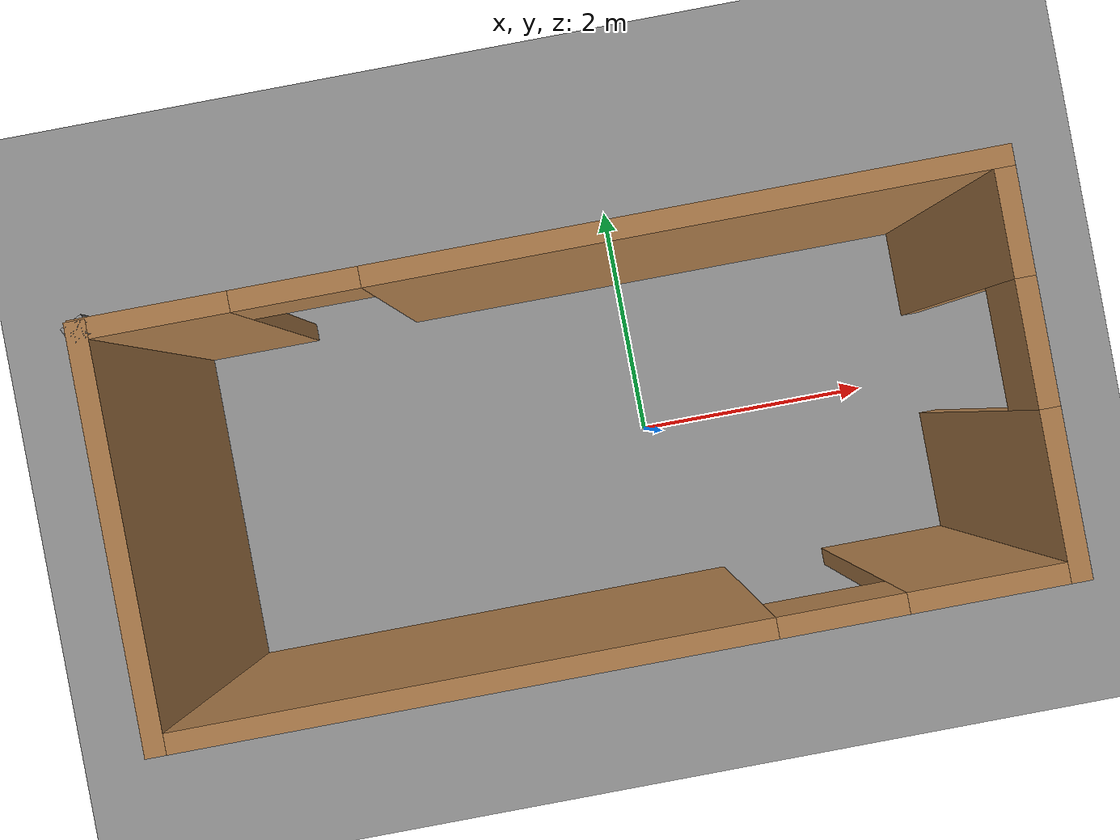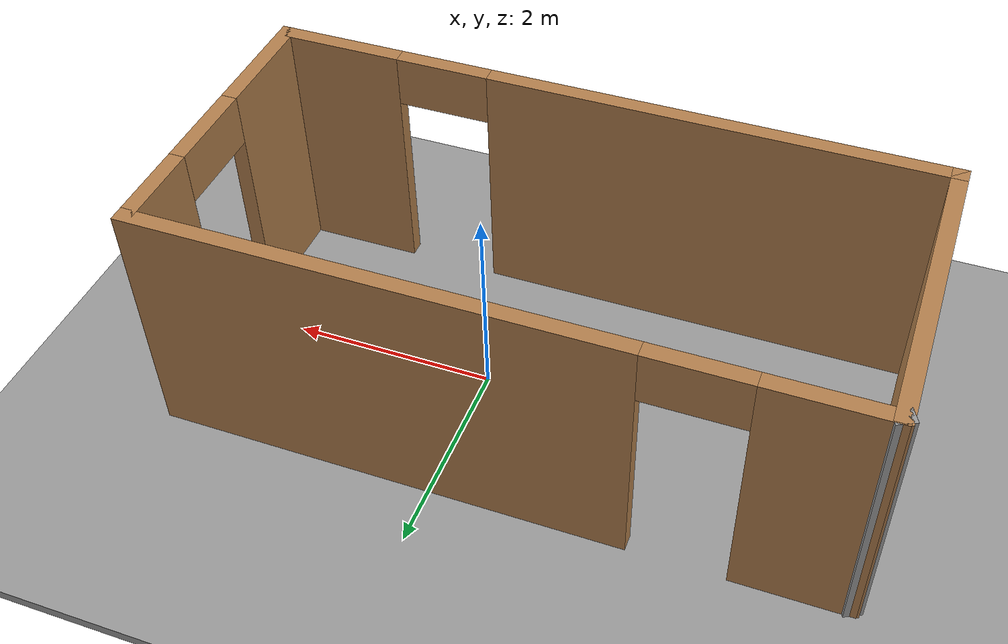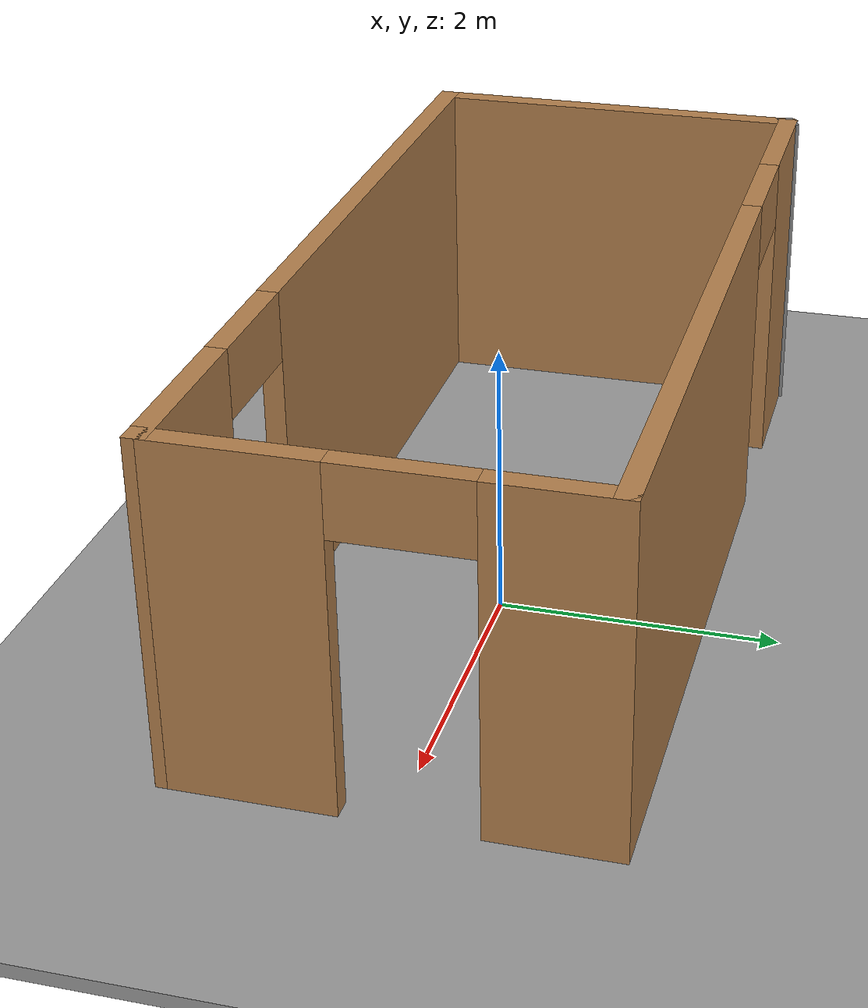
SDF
<sdf version="1.7">
 <world name="default">
  <light name="sun" type="directional">
   <pose>0 0 10 0 -0 0</pose>
   <diffuse>0.8 0.8 0.8 1</diffuse>
   <specular>0.2 0.2 0.2 1</specular>
   <attenuation>
    <range>1000</range>
    <constant>0.9</constant>
    <linear>0.01</linear>
    <quadratic>0.001</quadratic>
   </attenuation>
   <direction>-0.5 0.1 -0.9</direction>
   <spot><inner_angle>0</inner_angle><outer_angle>0</outer_angle><falloff>0</falloff></spot>
  </light>
  <model name="ground_plane">
   <static>1</static>
   <link name="link">
    <collision name="collision">
     <geometry><plane><normal>0 0 1</normal><size>100 100</size></plane></geometry>
     <surface>
      <contact><collide_bitmask>65535</collide_bitmask></contact>
      <friction><ode><mu>100</mu><mu2>50</mu2></ode></friction>
     </surface>
    </collision>
    <visual name="visual">
     <cast_shadows>0</cast_shadows>
     <geometry><plane><normal>0 0 1</normal><size>100 100</size></plane></geometry>
     <material>
      <script><uri>file://media/materials/scripts/gazebo.material</uri><name>Gazebo/Grey</name></script>
     </material>
    </visual>
   </link>
  </model>
  <gravity>0 0 -9.8</gravity>
  <magnetic_field>6e-06 2.3e-05 -4.2e-05</magnetic_field>
  <atmosphere type="adiabatic"/>
  <physics type="ode">
   <max_step_size>0.001</max_step_size>
   <real_time_factor>1</real_time_factor>
   <real_time_update_rate>1000</real_time_update_rate>
  </physics>
  <scene><ambient>0.4 0.4 0.4 1</ambient><background>0.7 0.7 0.7 1</background><shadows>1</shadows></scene>
  <audio><device>default</device></audio>
  <spherical_coordinates>
   <surface_model>EARTH_WGS84</surface_model>
   <latitude_deg>0</latitude_deg>
   <longitude_deg>0</longitude_deg>
   <elevation>0</elevation>
   <heading_deg>0</heading_deg>
  </spherical_coordinates>
  <model name="ground_plane_0">
   <static>1</static>
   <link name="link">
    <collision name="collision">
     <geometry><plane><normal>0 0 1</normal><size>100 100</size></plane></geometry>
     <surface>
      <contact><collide_bitmask>65535</collide_bitmask></contact>
      <friction><ode><mu>100</mu><mu2>50</mu2></ode></friction>
     </surface>
    </collision>
    <visual name="visual">
     <cast_shadows>0</cast_shadows>
     <geometry><plane><normal>0 0 1</normal><size>100 100</size></plane></geometry>
     <material>
      <script><uri>file://media/materials/scripts/gazebo.material</uri><name>Gazebo/Grey</name></script>
     </material>
    </visual>
   </link>
   <pose>-1.9238 1.80371 0 0 -0 0</pose>
  </model>
  <model name="test">
   <pose>-0.637753 -0.007247 0 0 -0 0</pose>
   <link name="Wall_0">
    <collision name="Wall_0_Collision">
     <geometry><box><size>3 0.15 2.5</size></box></geometry>
     <pose>0 0 1.25 0 -0 0</pose>
    </collision>
    <visual name="Wall_0_Visual">
     <pose>0 0 1.25 0 -0 0</pose>
     <geometry><box><size>3 0.15 2.5</size></box></geometry>
     <material>
      <script><uri>file://media/materials/scripts/gazebo.material</uri><name>Gazebo/Wood</name></script>
      <ambient>1 1 1 1</ambient>
     </material>
     <meta><layer>0</layer></meta>
    </visual>
    <pose>-3.17225 -0.017753 0 0 -0 1.5708</pose>
   </link>
   <link name="Wall_2">
    <collision name="Wall_2_Collision">
     <geometry><box><size>0.172361 0.15 2.5</size></box></geometry>
     <pose>0 0 1.25 0 -0 0</pose>
    </collision>
    <visual name="Wall_2_Visual">
     <pose>0 0 1.25 0 -0 0</pose>
     <geometry><box><size>0.172361 0.15 2.5</size></box></geometry>
     <material>
      <script><uri>file://media/materials/scripts/gazebo.material</uri><name>Gazebo/Grey</name></script>
      <ambient>1 1 1 1</ambient>
     </material>
     <meta><layer>0</layer></meta>
    </visual>
    <pose>-3.16225 1.41225 0 0 -0 0.463648</pose>
   </link>
   <link name="Wall_3">
    <pose>0.022753 1.41725 0 0 -0 0</pose>
    <visual name="Wall_3_Visual_0">
     <pose>-2.6975 0 1.25 0 -0 0</pose>
     <geometry><box><size>1.105 0.15 2.5</size></box></geometry>
     <material>
      <script><uri>file://media/materials/scripts/gazebo.material</uri><name>Gazebo/Wood</name></script>
      <ambient>1 1 1 1</ambient>
     </material>
     <meta><layer>0</layer></meta>
    </visual>
    <collision name="Wall_3_Collision_0">
     <geometry><box><size>1.105 0.15 2.5</size></box></geometry>
     <pose>-2.6975 0 1.25 0 -0 0</pose>
    </collision>
    <visual name="Wall_3_Visual_1">
     <pose>1.0025 0 1.25 0 -0 0</pose>
     <geometry><box><size>4.495 0.15 2.5</size></box></geometry>
     <material>
      <script><uri>file://media/materials/scripts/gazebo.material</uri><name>Gazebo/Wood</name></script>
      <ambient>1 1 1 1</ambient>
     </material>
     <meta><layer>0</layer></meta>
    </visual>
    <collision name="Wall_3_Collision_1">
     <geometry><box><size>4.495 0.15 2.5</size></box></geometry>
     <pose>1.0025 0 1.25 0 -0 0</pose>
    </collision>
    <visual name="Wall_3_Visual_2">
     <pose>-1.695 0 2.25 0 -0 0</pose>
     <geometry><box><size>0.9 0.15 0.5</size></box></geometry>
     <material>
      <script><uri>file://media/materials/scripts/gazebo.material</uri><name>Gazebo/Wood</name></script>
      <ambient>1 1 1 1</ambient>
     </material>
     <meta><layer>0</layer></meta>
    </visual>
    <collision name="Wall_3_Collision_2">
     <geometry><box><size>0.9 0.15 0.5</size></box></geometry>
     <pose>-1.695 0 2.25 0 -0 0</pose>
    </collision>
   </link>
   <link name="Wall_4">
    <pose>3.19775 -0.007753 0 0 -0 -1.5708</pose>
    <visual name="Wall_4_Visual_0">
     <pose>-1.0475 0 1.25 0 -0 0</pose>
     <geometry><box><size>0.905 0.15 2.5</size></box></geometry>
     <material>
      <script><uri>file://media/materials/scripts/gazebo.material</uri><name>Gazebo/Wood</name></script>
      <ambient>1 1 1 1</ambient>
     </material>
     <meta><layer>0</layer></meta>
    </visual>
    <collision name="Wall_4_Collision_0">
     <geometry><box><size>0.905 0.15 2.5</size></box></geometry>
     <pose>-1.0475 0 1.25 0 -0 0</pose>
    </collision>
    <visual name="Wall_4_Visual_1">
     <pose>0.9025 0 1.25 0 -0 0</pose>
     <geometry><box><size>1.195 0.15 2.5</size></box></geometry>
     <material>
      <script><uri>file://media/materials/scripts/gazebo.material</uri><name>Gazebo/Wood</name></script>
      <ambient>1 1 1 1</ambient>
     </material>
     <meta><layer>0</layer></meta>
    </visual>
    <collision name="Wall_4_Collision_1">
     <geometry><box><size>1.195 0.15 2.5</size></box></geometry>
     <pose>0.9025 0 1.25 0 -0 0</pose>
    </collision>
    <visual name="Wall_4_Visual_2">
     <pose>-0.145 0 2.25 0 -0 0</pose>
     <geometry><box><size>0.9 0.15 0.5</size></box></geometry>
     <material>
      <script><uri>file://media/materials/scripts/gazebo.material</uri><name>Gazebo/Wood</name></script>
      <ambient>1 1 1 1</ambient>
     </material>
     <meta><layer>0</layer></meta>
    </visual>
    <collision name="Wall_4_Collision_2">
     <geometry><box><size>0.9 0.15 0.5</size></box></geometry>
     <pose>-0.145 0 2.25 0 -0 0</pose>
    </collision>
   </link>
   <link name="Wall_5">
    <pose>0.012753 -1.43775 0 0 -0 -3.14002</pose>
    <visual name="Wall_5_Visual_0">
     <pose>-2.63252 0 1.25 0 -0 0</pose>
     <geometry><box><size>1.25497 0.15 2.5</size></box></geometry>
     <material>
      <script><uri>file://media/materials/scripts/gazebo.material</uri><name>Gazebo/Wood</name></script>
      <ambient>1 1 1 1</ambient>
     </material>
     <meta><layer>0</layer></meta>
    </visual>
    <collision name="Wall_5_Collision_0">
     <geometry><box><size>1.25497 0.15 2.5</size></box></geometry>
     <pose>-2.63252 0 1.25 0 -0 0</pose>
    </collision>
    <visual name="Wall_5_Visual_1">
     <pose>1.07748 0 1.25 0 -0 0</pose>
     <geometry><box><size>4.36504 0.15 2.5</size></box></geometry>
     <material>
      <script><uri>file://media/materials/scripts/gazebo.material</uri><name>Gazebo/Wood</name></script>
      <ambient>1 1 1 1</ambient>
     </material>
     <meta><layer>0</layer></meta>
    </visual>
    <collision name="Wall_5_Collision_1">
     <geometry><box><size>4.36504 0.15 2.5</size></box></geometry>
     <pose>1.07748 0 1.25 0 -0 0</pose>
    </collision>
    <visual name="Wall_5_Visual_2">
     <pose>-1.55504 0 2.25 0 -0 0</pose>
     <geometry><box><size>0.9 0.15 0.5</size></box></geometry>
     <material>
      <script><uri>file://media/materials/scripts/gazebo.material</uri><name>Gazebo/Wood</name></script>
      <ambient>1 1 1 1</ambient>
     </material>
     <meta><layer>0</layer></meta>
    </visual>
    <collision name="Wall_5_Collision_2">
     <geometry><box><size>0.9 0.15 0.5</size></box></geometry>
     <pose>-1.55504 0 2.25 0 -0 0</pose>
    </collision>
   </link>
   <static>1</static>
  </model>
 </world>
</sdf>
